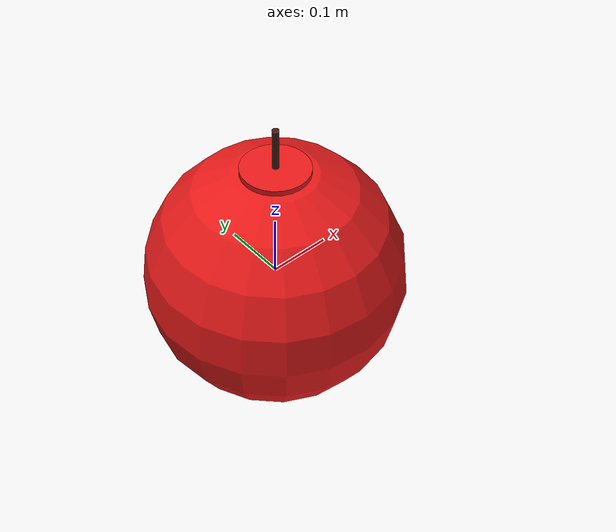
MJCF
<mujoco model="realistic_red_apple">
    <asset>
        <material name="apple_material" rgba="0.9 0.1 0.1 1" specular="0.4" shininess="0.9" reflectance="0.05"/>
    </asset>
    <worldbody>
        <body name="apple" pos="0 0 0">
            <!-- Main body of the apple -->
            <geom name="apple_body" type="sphere" size="0.2" material="apple_material"/>
            <!-- Simulated indentation at the top by using a small cylinder -->
            <geom name="top_indent" type="cylinder" size="0.05 0.01" pos="0 0 0.19" material="apple_material"/>
            <!-- Stem of the apple -->
            <geom name="apple_stem" type="cylinder" size="0.005 0.04" pos="0 0 0.22" rgba="0.25 0.1 0.05 1"/>
            <!-- Simulated indentation at the bottom by using a small cylinder -->
            <geom name="bottom_indent" type="cylinder" size="0.05 0.01" pos="0 0 -0.19" material="apple_material"/>
        </body>
    </worldbody>
</mujoco>
